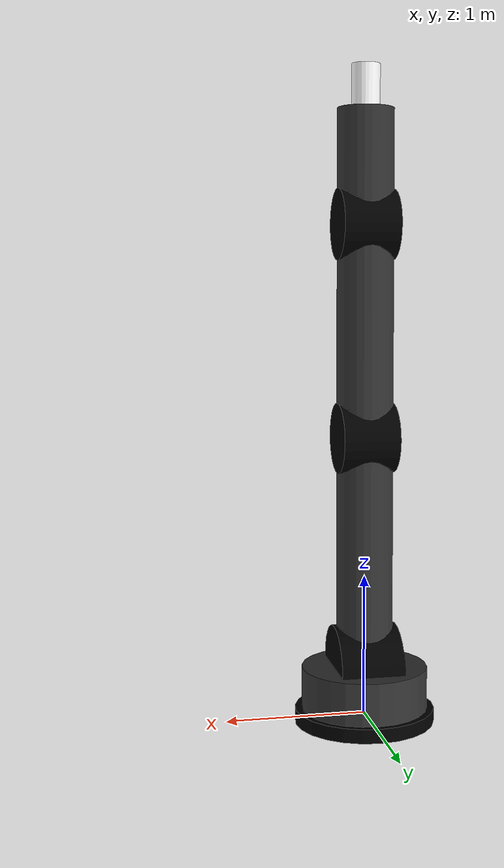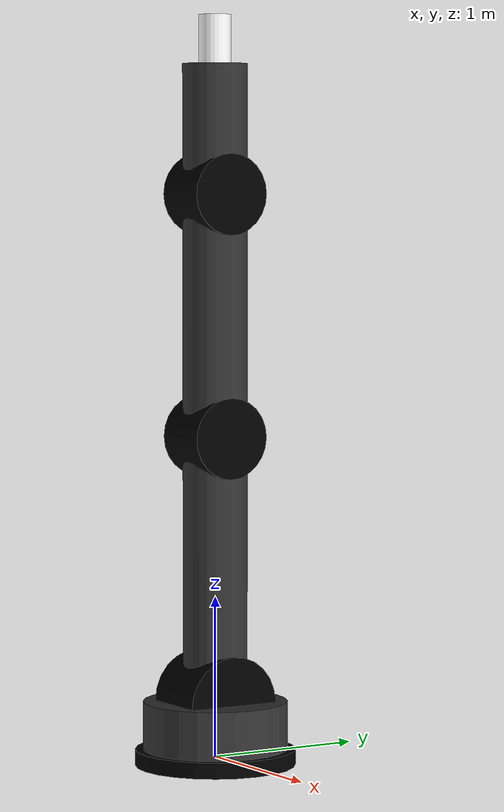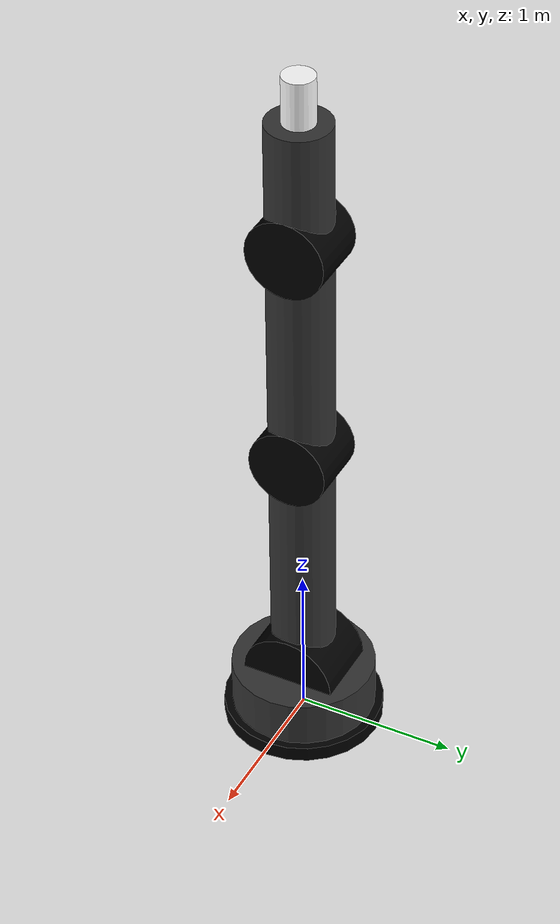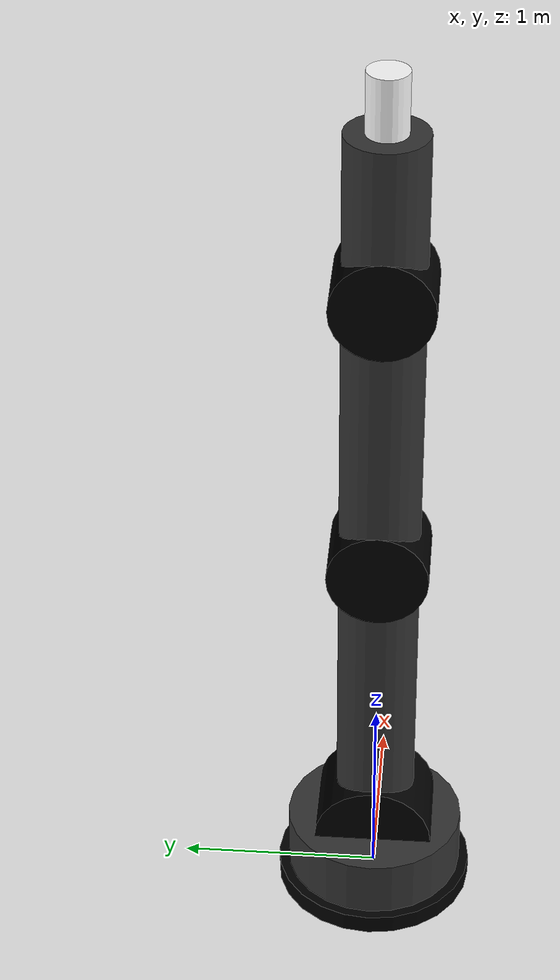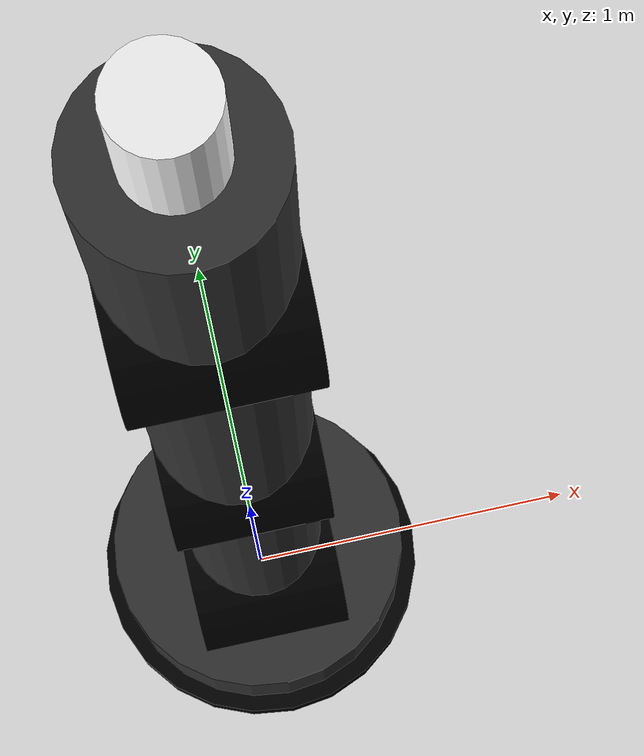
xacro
<?xml version="1.0"?>
<robot xmlns:xacro="http://www.ros.org/wiki/xacro" >

    <xacro:include filename="inertial_macros.xacro"/>
    <xacro:include filename="colors.xacro"/>

    <!-- =========== Parameter Definitions =========== -->
    <xacro:property name="platform_length"              value="0.3"/>

    <xacro:property name="circuit_joint_1_radius"       value="0.3"/>
    <xacro:property name="circuit_joint_2_radius"       value="0.25"/>
    <xacro:property name="circuit_joint_3_radius"       value="0.25"/>

    <xacro:property name="arm_1_length"                 value="1.5"/>
    <xacro:property name="arm_2_length"                 value="1.5"/>
    <xacro:property name="arm_3_length"                 value="0.8"/>
    <xacro:property name="gripper_length"               value="0.3"/>

    <!-- =========== BASE LINK =========== -->
    <link name="base_link">
        <visual>
            <origin xyz="0 0 0"/>
            <geometry>
                <cylinder radius="0.5" length="0.1"/>
            </geometry>
            <material name="black"/>
        </visual>
        <collision>
            <origin xyz="0 0 0"/>
            <geometry>
                <cylinder radius="0.5" length="0.1"/>
            </geometry>
        </collision>
        <xacro:inertial_cylinder mass="40.0" radius="0.5" length="0.1">
            <origin xyz="0 0 0" rpy="0 0 0"/>
        </xacro:inertial_cylinder>
    </link>

    <joint name="platform_joint" type="revolute">
        <parent link="base_link"/>
        <child link="platform"/>
        <origin xyz="0 0 0.2"/>
        <axis xyz="0 0 1"/>
        <limit lower="-3.14159" upper="3.14159"
           effort="100" velocity="1.0"/>
    </joint>

    <link name="platform">
        <visual>
            <origin xyz="0 0 0"/>
            <geometry>
                <cylinder radius="0.45" length="${platform_length}"/>
            </geometry>
            <material name="grey"/>
        </visual>
        <collision>
            <origin xyz="0 0 0"/>
            <geometry>
                <cylinder radius="0.45" length="${platform_length}"/>
            </geometry>
        </collision>
        <xacro:inertial_cylinder mass="30.0" radius="0.45" length="${platform_length}">
            <origin xyz="0 0 0" rpy="0 0 0"/>
        </xacro:inertial_cylinder>
    </link>

    <!-- =========== BOTTOM ARM =========== -->
    <joint name="arm_joint_1" type="revolute">
        <parent link="platform"/>
        <child link="circuit_joint_1"/>
        <origin xyz="0 0 ${platform_length/2}" rpy="0 0 0"/> <!-- platform/2 0.3/2 -->
        <axis xyz="1 0 0"/>
        <limit lower="-1.047" upper="1.047"
           effort="100" velocity="1.0"/> <!-- pi/3 -->
    </joint>

    <link name="circuit_joint_1">
        <visual>
            <origin xyz="0 0 0" rpy="0 1.5708 0"/>
            <geometry>
                <cylinder radius="${circuit_joint_1_radius}" length="0.45"/>
            </geometry>
            <material name="black"/>
        </visual>
        <collision>
            <origin xyz="0 0 0" rpy="0 1.5708 0"/>
            <geometry>
                <cylinder radius="${circuit_joint_1_radius}" length="0.45"/>
            </geometry>
        </collision>
        <xacro:inertial_cylinder mass="20.0" radius="${circuit_joint_1_radius}" length="0.45">
            <origin xyz="0 0 0" rpy="0 1.5708 0"/>
        </xacro:inertial_cylinder>
    </link>

    <joint name="arm_joint_1_fixed" type="fixed">
        <parent link="circuit_joint_1"/>
        <child link="arm_1"/>
        <origin xyz="0 0 ${circuit_joint_1_radius/2 + arm_1_length/2}"/>
    </joint>

    <link name="arm_1">
        <visual>
            <origin xyz="0 0 0" rpy="0 0 0"/>
            <geometry>
                <cylinder radius="0.2" length="${arm_1_length}"/>
            </geometry>
            <material name="grey"/>
        </visual>
        <collision>
            <origin xyz="0 0 0" rpy="0 0 0"/>
            <geometry>
                <cylinder radius="0.2" length="${arm_1_length}"/>
            </geometry>
        </collision>
        <xacro:inertial_cylinder mass="2.0" radius="0.2" length="${arm_1_length}">
            <origin xyz="0 0 0" rpy="0 0 0"/>
        </xacro:inertial_cylinder>
    </link>

    <!-- =========== MIDDLE ARM =========== -->
    <joint name="arm_joint_2" type="revolute">
        <parent link="arm_1"/>
        <child link="circuit_joint_2"/>
        <origin xyz="0 0 ${arm_1_length/2}" rpy="0 0 0"/>
        <axis xyz="1 0 0"/>
        <limit lower="-2.356" upper="2.356"
           effort="100" velocity="1.0"/>
    </joint>

    <link name="circuit_joint_2">
        <visual>
            <origin xyz="0 0 0" rpy="0 1.5708 0"/>
            <geometry>
                <cylinder radius="${circuit_joint_2_radius}" length="0.4"/>
            </geometry>
            <material name="black"/>
        </visual>
        <collision>
            <origin xyz="0 0 0" rpy="0 1.5708 0"/>
            <geometry>
                <cylinder radius="${circuit_joint_2_radius}" length="0.4"/>
            </geometry>
        </collision>
        <xacro:inertial_cylinder mass="2.0" radius="${circuit_joint_2_radius}" length="0.4">
            <origin xyz="0 0 0" rpy="0 1.5708 0"/>
        </xacro:inertial_cylinder>
    </link>

    <joint name="arm_joint_2_fixed" type="fixed">
        <parent link="circuit_joint_2"/>
        <child link="arm_2"/>
        <origin xyz="0 0 ${arm_2_length/2}"/>
    </joint>

    <link name="arm_2">
        <visual>
            <origin xyz="0 0 0" rpy="0 0 0"/>
            <geometry>
                <cylinder radius="0.2" length="${arm_2_length}"/>
            </geometry>
            <material name="grey"/>
        </visual>
        <collision>
            <origin xyz="0 0 0" rpy="0 0 0"/>
            <geometry>
                <cylinder radius="0.2" length="${arm_2_length}"/>
            </geometry>
        </collision>
        <xacro:inertial_cylinder mass="1.5" radius="0.2" length="${arm_2_length}">
            <origin xyz="0 0 0" rpy="0 0 0"/>
        </xacro:inertial_cylinder>
    </link>

    <!-- =========== END ARM =========== -->
    <joint name="arm_joint_3" type="revolute">
        <parent link="arm_2"/>
        <child link="circuit_joint_3"/>
        <origin xyz="0 0 ${arm_2_length/2}" rpy="0 0 0"/>
        <axis xyz="1 0 0"/>
        <limit lower="-2.356" upper="2.356"
           effort="100" velocity="1.0"/>
    </joint>

    <link name="circuit_joint_3">
        <visual>
            <origin xyz="0 0 0" rpy="0 1.5708 0"/>
            <geometry>
                <cylinder radius="${circuit_joint_3_radius}" length="0.4"/>
            </geometry>
            <material name="black"/>
        </visual>
        <collision>
            <origin xyz="0 0 0" rpy="0 1.5708 0"/>
            <geometry>
                <cylinder radius="${circuit_joint_3_radius}" length="0.4"/>
            </geometry>
        </collision>
        <xacro:inertial_cylinder mass="2.0" radius="${circuit_joint_3_radius}" length="0.4">
            <origin xyz="0 0 0" rpy="0 1.5708 0"/>
        </xacro:inertial_cylinder>
    </link>

    <joint name="arm_joint_3_fixed" type="fixed">
        <parent link="circuit_joint_3"/>
        <child link="arm_3"/>
        <origin xyz="0 0 ${arm_3_length/2}"/>
    </joint>

    <link name="arm_3">
        <visual>
            <origin xyz="0 0 0" rpy="0 0 0"/>
            <geometry>
                <cylinder radius="0.2" length="${arm_3_length}"/>
            </geometry>
            <material name="grey"/>
        </visual>
        <collision>
            <origin xyz="0 0 0" rpy="0 0 0"/>
            <geometry>
                <cylinder radius="0.2" length="${arm_3_length}"/>
            </geometry>
        </collision>
        <xacro:inertial_cylinder mass="1.0" radius="0.2" length="${arm_3_length}">
            <origin xyz="0 0 0" rpy="0 0 0"/>
        </xacro:inertial_cylinder>
    </link>

    <!-- =========== GRIPPER =========== -->
    <joint name="arm_joint_4_fixed" type="fixed">
        <parent link="arm_3"/>
        <child link="gripper"/>
        <origin xyz="0 0 ${arm_3_length/2 + gripper_length/2}"/>
    </joint>

    <link name="gripper">
        <visual>
            <origin xyz="0 0 0" rpy="0 0 0"/>
            <geometry>
                <cylinder radius="0.1" length="${gripper_length}"/>
            </geometry>
            <material name="white"/>
        </visual>
        <collision>
            <origin xyz="0 0 0" rpy="0 0 0"/>
            <geometry>
                <cylinder radius="0.1" length="${gripper_length}"/>
            </geometry>
        </collision>
        <xacro:inertial_cylinder mass="0.1" radius="0.1" length="${gripper_length}">
            <origin xyz="0 0 0" rpy="0 0 0"/>
        </xacro:inertial_cylinder>
    </link>
</robot>

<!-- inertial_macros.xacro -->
<robot xmlns:xacro="http://www.ros.org/wiki/xacro">

    <xacro:macro name="inertial_cylinder" params="mass radius length *origin">

        <inertial>
            <xacro:insert_block name="origin"/>

            <mass value="${mass}"/>

            <inertia
                ixx="${mass * (3 * radius * radius + length * length) / 12}"
                ixy="0.0"
                ixz="0.0"
                iyy="${mass * (3 * radius * radius + length * length) / 12}"
                iyz="0.0"
                izz="${mass * radius * radius / 2}"/>
        </inertial>

    </xacro:macro>

</robot>

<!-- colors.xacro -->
<robot xmlns:xacro="http://www.ros.org/wiki/xacro" >

    <material name="white">
        <color rgba="1 1 1 1" />
    </material>

    <material name="purple">
        <color rgba="0.0 0.0 0.1 1"/>
    </material>

        <material name="grey">
        <color rgba="0.2 0.2 0.2 1"/>
    </material>

        <material name="dark_blue">
        <color rgba="0.0 0.0 0.5 1"/>
    </material>

    <material name="blue">
        <color rgba="0.2 0.1 0.2 1"/>
    </material>

    <material name="red">
        <color rgba="0.2 0.0 0.0 1"/>
    </material>

    <material name="black">
    <color rgba="0 0 0 1"/>
</material>

</robot>
